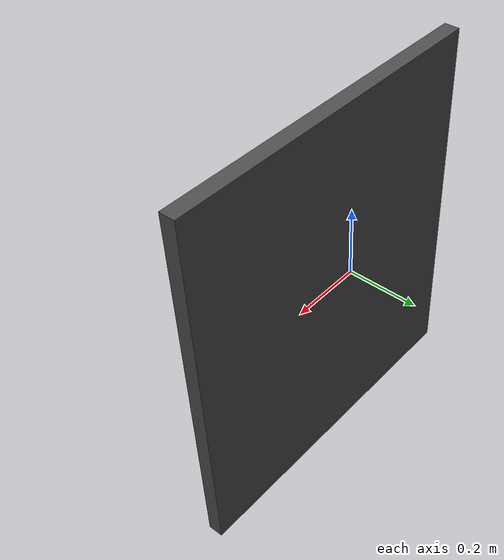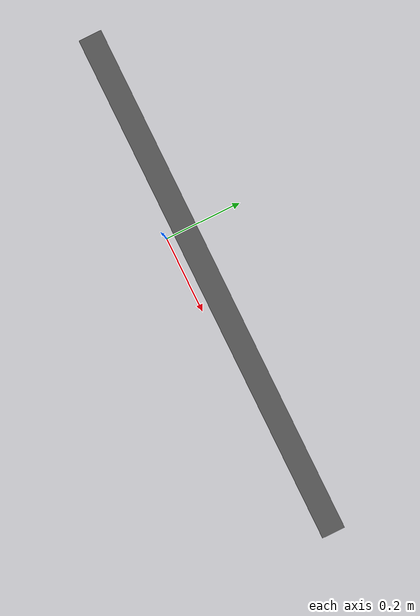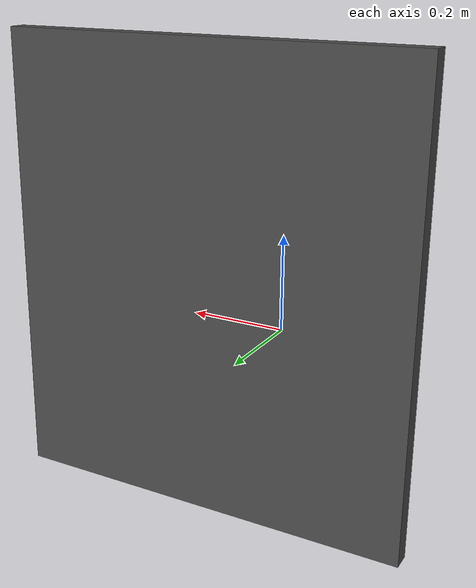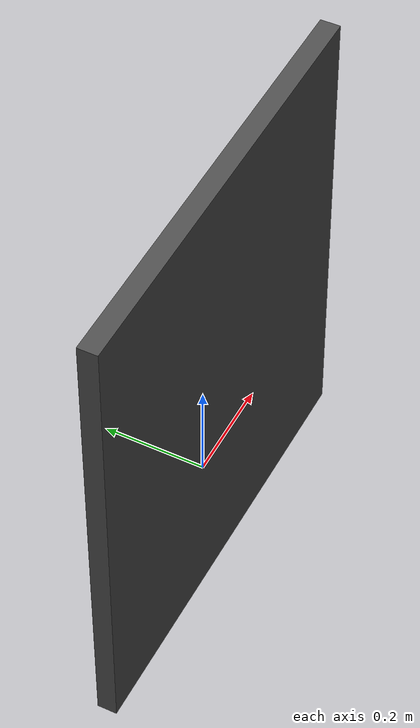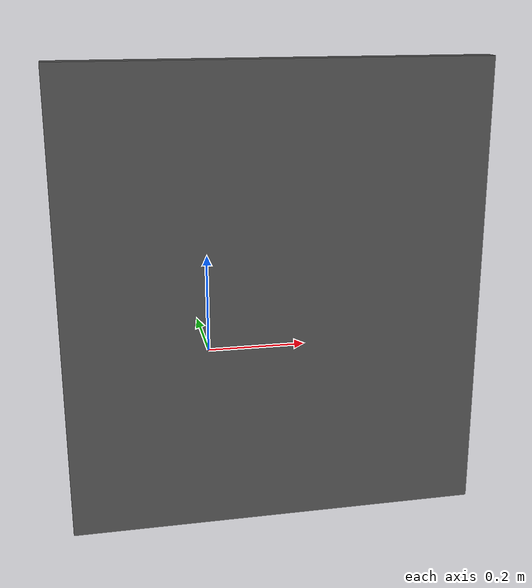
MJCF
<?xml version="1.0" encoding="utf-8"?>
<mujoco model="wall2">
  <worldbody>
    <body>
      <body name="object" pos="0 0 0">
        <body name="base" pos="0 0 0" quat="1 0 0 0">
          <!-- collision geometry -->
          <!-- default friction: friction="1 0.005 0.0001" -->
          <geom name="obstacle" type="box"
                size="0.45 0.02 0.50" pos="0.15 0.05 0.08"
                rgba="0.3 0.3 0.3 0.9" group="0"
                friction="0.5 0.0 0.0"/>
          <!-- visual-only duplicate (no collisions) -->
          <geom name="visual_obj" type="box"
                size="0.45 0.02 0.50" pos="0.15 0.05 0.08"
                rgba="0.3 0.3 0.3 0.9" group="1" conaffinity="0" contype="0"
                friction="1 0.005 0.0001"/>
        </body>
      </body>

      <!-- helper sites aligned to actual extents -->
      <site name="bottom_site" pos="0 0 0.00" rgba="0 0 0 0" size="0.005"/>
      <site name="top_site"    pos="0 0 0.16" rgba="0 0 0 0" size="0.005"/>
      <site name="horizontal_radius_site" pos="0.15 0 0.08" rgba="0 0 0 0" size="0.1"/>
    </body>
  </worldbody>
</mujoco>
